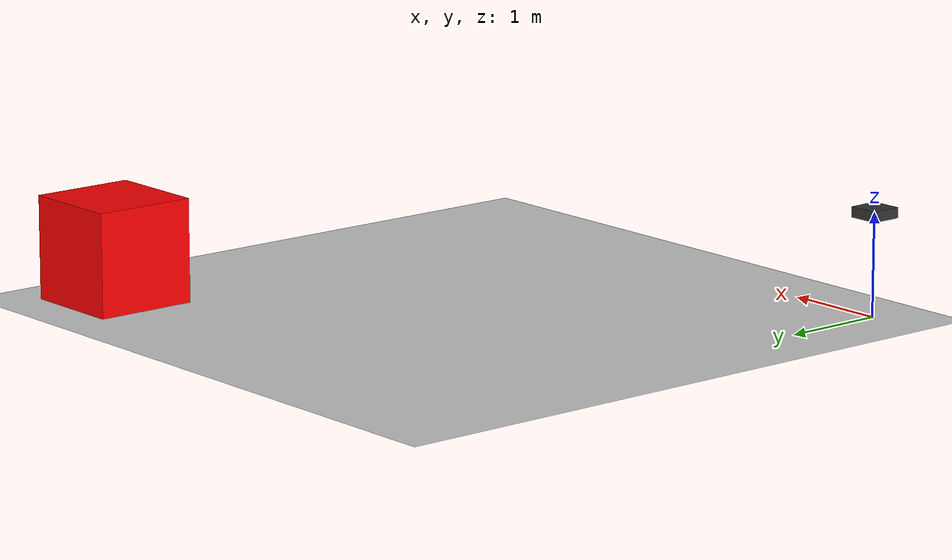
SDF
<?xml version="1.0" ?>
<sdf version="1.6">
  <world name="drone_world">
    <physics name="default" type="ode">
      <max_step_size>0.001</max_step_size>
      <real_time_factor>1.0</real_time_factor>
    </physics>

    <scene>
      <ambient>0.4 0.4 0.4</ambient>
      <background>0.7 0.7 1.0</background>
      <shadows>true</shadows>
    </scene>

    <light type="directional" name="sun">
      <cast_shadows>true</cast_shadows>
      <pose>0 0 10 0 0 0</pose>
      <diffuse>0.8 0.8 0.8 1</diffuse>
      <specular>0.2 0.2 0.2 1</specular>
      <attenuation>
        <range>1000</range>
        <constant>0.9</constant>
        <linear>0.01</linear>
        <quadratic>0.001</quadratic>
      </attenuation>
      <direction>-0.5 0.1 -0.9</direction>
    </light>

    <!-- Ground Plane -->
    <model name="ground_plane">
      <static>true</static>
      <link name="link">
        <collision name="collision">
          <geometry>
            <plane>
              <normal>0 0 1</normal>
              <size>100 100</size>
            </plane>
          </geometry>
        </collision>
        <visual name="visual">
          <geometry>
            <plane>
              <normal>0 0 1</normal>
              <size>100 100</size>
            </plane>
          </geometry>
          <material>
            <ambient>0.8 0.8 0.8 1</ambient>
            <diffuse>0.8 0.8 0.8 1</diffuse>
            <specular>0.8 0.8 0.8 1</specular>
          </material>
        </visual>
      </link>
    </model>

    <!-- Test Objects for Vision -->
    <model name="red_box">
      <pose>5 5 0.5 0 0 0</pose>
      <static>true</static>
      <link name="box_link">
        <visual name="box_visual">
          <geometry>
            <box>
              <size>1 1 1</size>
            </box>
          </geometry>
          <material>
            <ambient>1 0 0 1</ambient>
            <diffuse>1 0 0 1</diffuse>
          </material>
        </visual>
        <collision name="box_collision">
          <geometry>
            <box>
              <size>1 1 1</size>
            </box>
          </geometry>
        </collision>
      </link>
    </model>

    <!-- Quadcopter Model -->
    <model name="nimbus_drone">
      <pose>0 0 1 0 0 0</pose>

      <!-- Main Body -->
      <link name="base_link">
        <inertial>
          <mass>1.5</mass>
          <inertia>
            <ixx>0.029</ixx>
            <ixy>0</ixy>
            <ixz>0</ixz>
            <iyy>0.029</iyy>
            <iyz>0</iyz>
            <izz>0.055</izz>
          </inertia>
        </inertial>

        <visual name="body_visual">
          <geometry>
            <box>
              <size>0.3 0.3 0.1</size>
            </box>
          </geometry>
          <material>
            <ambient>0.2 0.2 0.2 1</ambient>
            <diffuse>0.2 0.2 0.2 1</diffuse>
          </material>
        </visual>

        <collision name="body_collision">
          <geometry>
            <box>
              <size>0.3 0.3 0.1</size>
            </box>
          </geometry>
        </collision>

        <!-- Camera -->
        <sensor name="camera" type="camera">
          <pose>0.15 0 0 0 0 0</pose>
          <camera>
            <horizontal_fov>1.047</horizontal_fov>
            <image>
              <width>640</width>
              <height>480</height>
            </image>
            <clip>
              <near>0.1</near>
              <far>100</far>
            </clip>
          </camera>
          <always_on>1</always_on>
          <update_rate>30</update_rate>
          <visualize>true</visualize>
          <topic>camera</topic>
        </sensor>
      </link>

    </model>

  </world>
</sdf>
